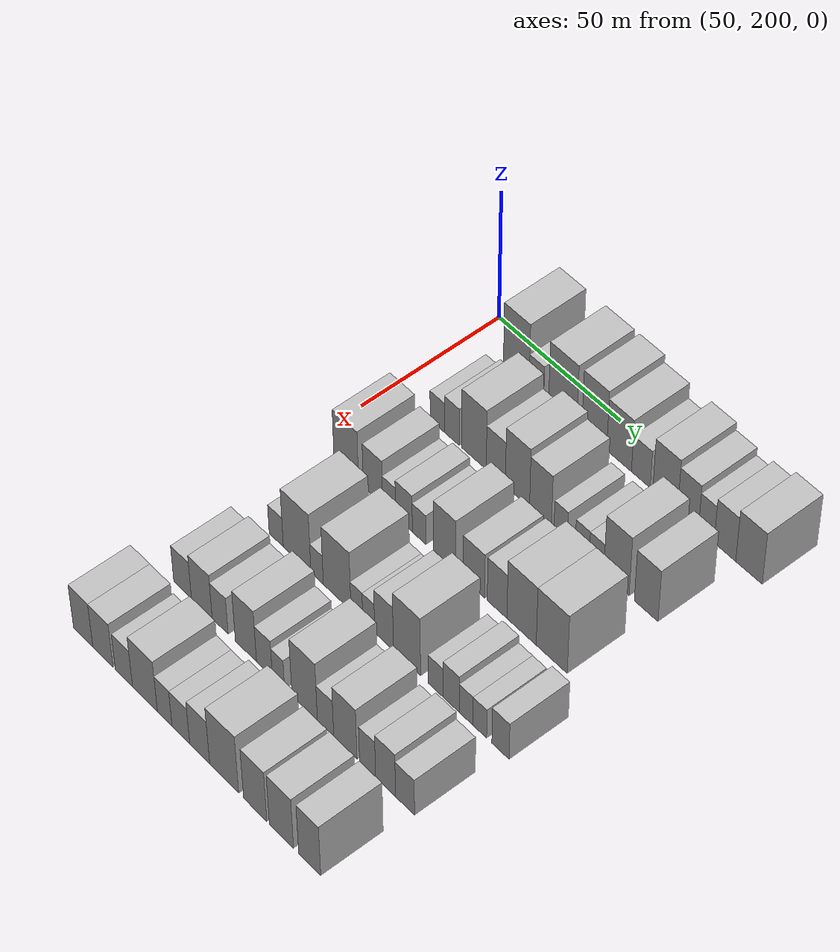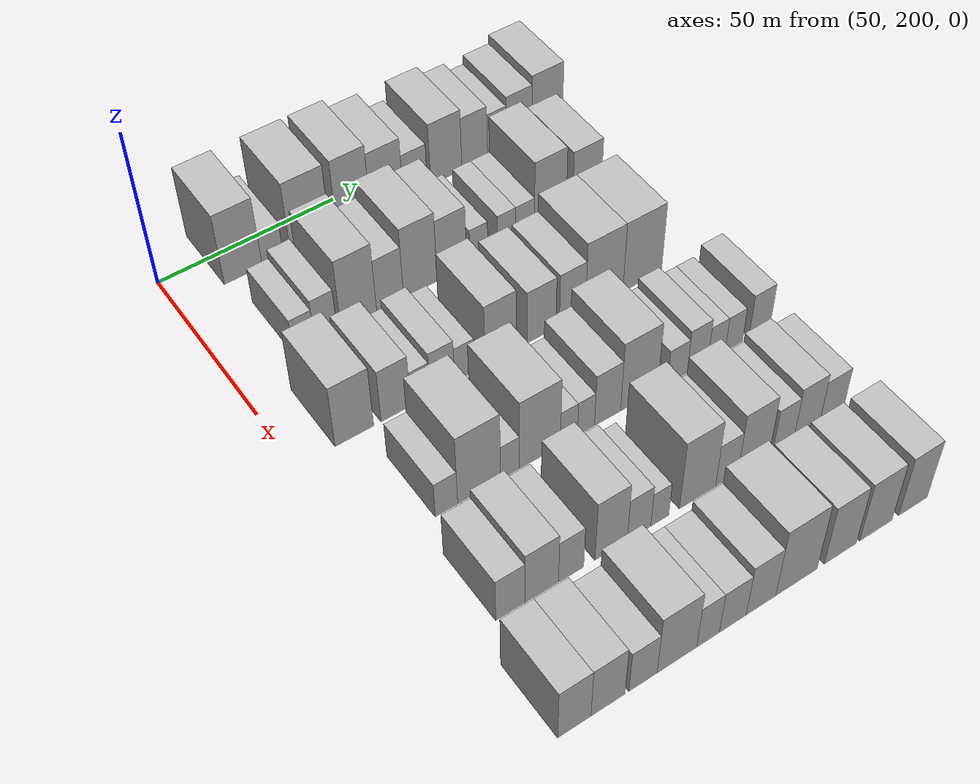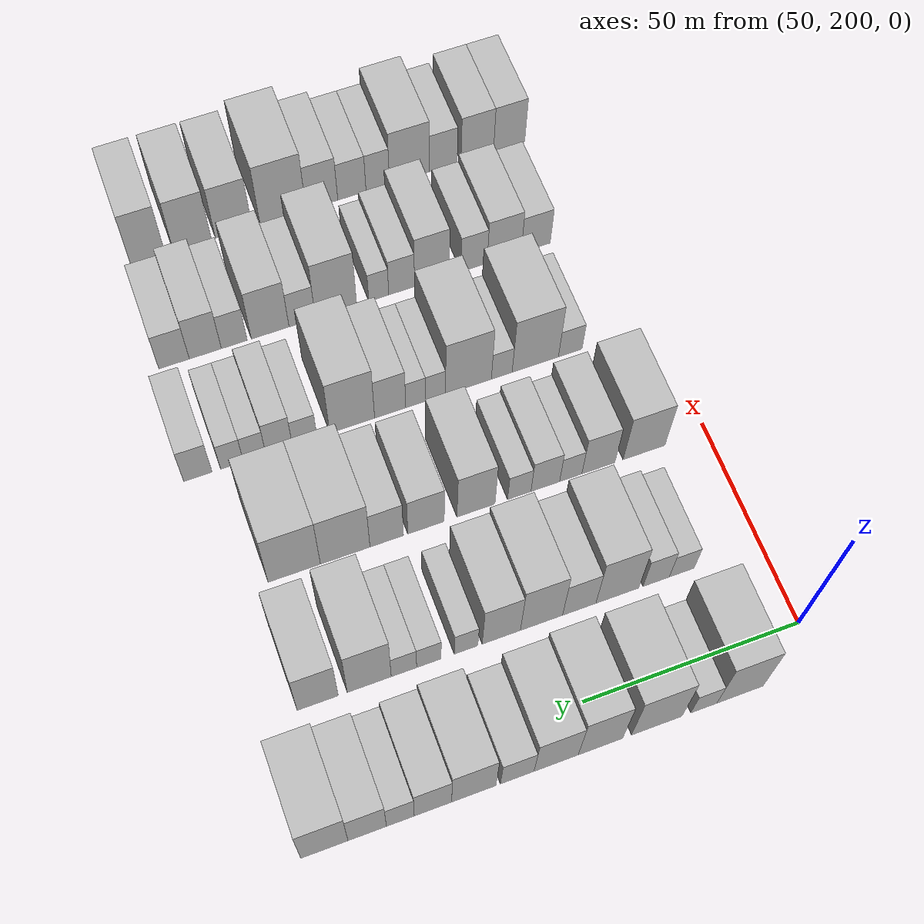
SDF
<sdf version="1.6">
 <world name="default">
  <model name="building_78">
   <static>1</static>
   <pose>50.0000 218.3975 0 0.000000 0.000000 0.000000</pose>
   <link name="link">
    <pose>0 0 12.00 0 0 0</pose>
    <collision name="collision"><geometry><box><size>20.0000 10.6711 24.0000</size></box></geometry></collision>
    <visual name="visual">
     <cast_shadows>0</cast_shadows>
     <geometry><box><size>20.0000 10.6711 24.0000</size></box></geometry>
     <material>
      <script>
       <uri>model://HANNAS_wall/materials/scripts</uri>
       <uri>model://HANNAS_wall/materials/textures</uri>
       <name>vrc/HANNAS_wall</name>
      </script>
     </material>
    </visual>
   </link>
  </model>
  <model name="building_79">
   <static>1</static>
   <pose>50.0000 226.7317 0 0.000000 0.000000 0.000000</pose>
   <link name="link">
    <pose>0 0 6.00 0 0 0</pose>
    <collision name="collision"><geometry><box><size>20.0000 5.9972 12.0000</size></box></geometry></collision>
    <visual name="visual">
     <cast_shadows>0</cast_shadows>
     <geometry><box><size>20.0000 5.9972 12.0000</size></box></geometry>
     <material>
      <script>
       <uri>model://HANNAS_wall/materials/scripts</uri>
       <uri>model://HANNAS_wall/materials/textures</uri>
       <name>vrc/HANNAS_wall</name>
      </script>
     </material>
    </visual>
   </link>
  </model>
  <model name="building_80">
   <static>1</static>
   <pose>50.0000 237.4745 0 0.000000 0.000000 0.000000</pose>
   <link name="link">
    <pose>0 0 12.00 0 0 0</pose>
    <collision name="collision"><geometry><box><size>20.0000 11.4885 24.0000</size></box></geometry></collision>
    <visual name="visual">
     <cast_shadows>0</cast_shadows>
     <geometry><box><size>20.0000 11.4885 24.0000</size></box></geometry>
     <material>
      <script>
       <uri>model://HANNAS_wall/materials/scripts</uri>
       <uri>model://HANNAS_wall/materials/textures</uri>
       <name>vrc/HANNAS_wall</name>
      </script>
     </material>
    </visual>
   </link>
  </model>
  <model name="building_81">
   <static>1</static>
   <pose>50.0000 250.2068 0 0.000000 0.000000 0.000000</pose>
   <link name="link">
    <pose>0 0 12.00 0 0 0</pose>
    <collision name="collision"><geometry><box><size>20.0000 9.9762 24.0000</size></box></geometry></collision>
    <visual name="visual">
     <cast_shadows>0</cast_shadows>
     <geometry><box><size>20.0000 9.9762 24.0000</size></box></geometry>
     <material>
      <script>
       <uri>model://HANNAS_wall/materials/scripts</uri>
       <uri>model://HANNAS_wall/materials/textures</uri>
       <name>vrc/HANNAS_wall</name>
      </script>
     </material>
    </visual>
   </link>
  </model>
  <model name="building_82">
   <static>1</static>
   <pose>50.0000 260.1306 0 0.000000 0.000000 0.000000</pose>
   <link name="link">
    <pose>0 0 10.50 0 0 0</pose>
    <collision name="collision"><geometry><box><size>20.0000 9.8714 21.0000</size></box></geometry></collision>
    <visual name="visual">
     <cast_shadows>0</cast_shadows>
     <geometry><box><size>20.0000 9.8714 21.0000</size></box></geometry>
     <material>
      <script>
       <uri>model://HANNAS_wall/materials/scripts</uri>
       <uri>model://HANNAS_wall/materials/textures</uri>
       <name>vrc/HANNAS_wall</name>
      </script>
     </material>
    </visual>
   </link>
  </model>
  <model name="building_83">
   <static>1</static>
   <pose>50.0000 268.7758 0 0.000000 0.000000 0.000000</pose>
   <link name="link">
    <pose>0 0 7.50 0 0 0</pose>
    <collision name="collision"><geometry><box><size>20.0000 7.4190 15.0000</size></box></geometry></collision>
    <visual name="visual">
     <cast_shadows>0</cast_shadows>
     <geometry><box><size>20.0000 7.4190 15.0000</size></box></geometry>
     <material>
      <script>
       <uri>model://HANNAS_wall/materials/scripts</uri>
       <uri>model://HANNAS_wall/materials/textures</uri>
       <name>vrc/HANNAS_wall</name>
      </script>
     </material>
    </visual>
   </link>
  </model>
  <model name="building_84">
   <static>1</static>
   <pose>50.0000 278.3371 0 0.000000 0.000000 0.000000</pose>
   <link name="link">
    <pose>0 0 10.50 0 0 0</pose>
    <collision name="collision"><geometry><box><size>20.0000 9.7036 21.0000</size></box></geometry></collision>
    <visual name="visual">
     <cast_shadows>0</cast_shadows>
     <geometry><box><size>20.0000 9.7036 21.0000</size></box></geometry>
     <material>
      <script>
       <uri>model://HANNAS_wall/materials/scripts</uri>
       <uri>model://HANNAS_wall/materials/textures</uri>
       <name>vrc/HANNAS_wall</name>
      </script>
     </material>
    </visual>
   </link>
  </model>
  <model name="building_85">
   <static>1</static>
   <pose>50.0000 287.2394 0 0.000000 0.000000 0.000000</pose>
   <link name="link">
    <pose>0 0 9.00 0 0 0</pose>
    <collision name="collision"><geometry><box><size>20.0000 8.1009 18.0000</size></box></geometry></collision>
    <visual name="visual">
     <cast_shadows>0</cast_shadows>
     <geometry><box><size>20.0000 8.1009 18.0000</size></box></geometry>
     <material>
      <script>
       <uri>model://HANNAS_wall/materials/scripts</uri>
       <uri>model://HANNAS_wall/materials/textures</uri>
       <name>vrc/HANNAS_wall</name>
      </script>
     </material>
    </visual>
   </link>
  </model>
  <model name="building_86">
   <static>1</static>
   <pose>50.0000 294.2984 0 0.000000 0.000000 0.000000</pose>
   <link name="link">
    <pose>0 0 7.50 0 0 0</pose>
    <collision name="collision"><geometry><box><size>20.0000 6.0171 15.0000</size></box></geometry></collision>
    <visual name="visual">
     <cast_shadows>0</cast_shadows>
     <geometry><box><size>20.0000 6.0171 15.0000</size></box></geometry>
     <material>
      <script>
       <uri>model://HANNAS_wall/materials/scripts</uri>
       <uri>model://HANNAS_wall/materials/textures</uri>
       <name>vrc/HANNAS_wall</name>
      </script>
     </material>
    </visual>
   </link>
  </model>
  <model name="building_87">
   <static>1</static>
   <pose>50.0000 301.4266 0 0.000000 0.000000 0.000000</pose>
   <link name="link">
    <pose>0 0 9.00 0 0 0</pose>
    <collision name="collision"><geometry><box><size>20.0000 8.2394 18.0000</size></box></geometry></collision>
    <visual name="visual">
     <cast_shadows>0</cast_shadows>
     <geometry><box><size>20.0000 8.2394 18.0000</size></box></geometry>
     <material>
      <script>
       <uri>model://HANNAS_wall/materials/scripts</uri>
       <uri>model://HANNAS_wall/materials/textures</uri>
       <name>vrc/HANNAS_wall</name>
      </script>
     </material>
    </visual>
   </link>
  </model>
  <model name="building_88">
   <static>1</static>
   <pose>50.0000 310.5753 0 0.000000 0.000000 0.000000</pose>
   <link name="link">
    <pose>0 0 10.50 0 0 0</pose>
    <collision name="collision"><geometry><box><size>20.0000 10.0580 21.0000</size></box></geometry></collision>
    <visual name="visual">
     <cast_shadows>0</cast_shadows>
     <geometry><box><size>20.0000 10.0580 21.0000</size></box></geometry>
     <material>
      <script>
       <uri>model://HANNAS_wall/materials/scripts</uri>
       <uri>model://HANNAS_wall/materials/textures</uri>
       <name>vrc/HANNAS_wall</name>
      </script>
     </material>
    </visual>
   </link>
  </model>
  <model name="building_192">
   <static>1</static>
   <pose>79.0000 218.8804 0 0.000000 0.000000 0.000000</pose>
   <link name="link">
    <pose>0 0 6.00 0 0 0</pose>
    <collision name="collision"><geometry><box><size>20.0000 5.8944 12.0000</size></box></geometry></collision>
    <visual name="visual">
     <cast_shadows>0</cast_shadows>
     <geometry><box><size>20.0000 5.8944 12.0000</size></box></geometry>
     <material>
      <script>
       <uri>model://HANNAS_wall/materials/scripts</uri>
       <uri>model://HANNAS_wall/materials/textures</uri>
       <name>vrc/HANNAS_wall</name>
      </script>
     </material>
    </visual>
   </link>
  </model>
  <model name="building_193">
   <static>1</static>
   <pose>79.0000 224.9401 0 0.000000 0.000000 0.000000</pose>
   <link name="link">
    <pose>0 0 7.50 0 0 0</pose>
    <collision name="collision"><geometry><box><size>20.0000 6.2251 15.0000</size></box></geometry></collision>
    <visual name="visual">
     <cast_shadows>0</cast_shadows>
     <geometry><box><size>20.0000 6.2251 15.0000</size></box></geometry>
     <material>
      <script>
       <uri>model://HANNAS_wall/materials/scripts</uri>
       <uri>model://HANNAS_wall/materials/textures</uri>
       <name>vrc/HANNAS_wall</name>
      </script>
     </material>
    </visual>
   </link>
  </model>
  <model name="building_194">
   <static>1</static>
   <pose>79.0000 234.0861 0 0.000000 0.000000 0.000000</pose>
   <link name="link">
    <pose>0 0 12.00 0 0 0</pose>
    <collision name="collision"><geometry><box><size>20.0000 10.0669 24.0000</size></box></geometry></collision>
    <visual name="visual">
     <cast_shadows>0</cast_shadows>
     <geometry><box><size>20.0000 10.0669 24.0000</size></box></geometry>
     <material>
      <script>
       <uri>model://HANNAS_wall/materials/scripts</uri>
       <uri>model://HANNAS_wall/materials/textures</uri>
       <name>vrc/HANNAS_wall</name>
      </script>
     </material>
    </visual>
   </link>
  </model>
  <model name="building_195">
   <static>1</static>
   <pose>79.0000 242.9933 0 0.000000 0.000000 0.000000</pose>
   <link name="link">
    <pose>0 0 9.00 0 0 0</pose>
    <collision name="collision"><geometry><box><size>20.0000 7.7475 18.0000</size></box></geometry></collision>
    <visual name="visual">
     <cast_shadows>0</cast_shadows>
     <geometry><box><size>20.0000 7.7475 18.0000</size></box></geometry>
     <material>
      <script>
       <uri>model://HANNAS_wall/materials/scripts</uri>
       <uri>model://HANNAS_wall/materials/textures</uri>
       <name>vrc/HANNAS_wall</name>
      </script>
     </material>
    </visual>
   </link>
  </model>
  <model name="building_196">
   <static>1</static>
   <pose>79.0000 251.7404 0 0.000000 0.000000 0.000000</pose>
   <link name="link">
    <pose>0 0 12.00 0 0 0</pose>
    <collision name="collision"><geometry><box><size>20.0000 9.7467 24.0000</size></box></geometry></collision>
    <visual name="visual">
     <cast_shadows>0</cast_shadows>
     <geometry><box><size>20.0000 9.7467 24.0000</size></box></geometry>
     <material>
      <script>
       <uri>model://HANNAS_wall/materials/scripts</uri>
       <uri>model://HANNAS_wall/materials/textures</uri>
       <name>vrc/HANNAS_wall</name>
      </script>
     </material>
    </visual>
   </link>
  </model>
  <model name="building_197">
   <static>1</static>
   <pose>79.0000 260.9863 0 0.000000 0.000000 0.000000</pose>
   <link name="link">
    <pose>0 0 10.50 0 0 0</pose>
    <collision name="collision"><geometry><box><size>20.0000 8.7450 21.0000</size></box></geometry></collision>
    <visual name="visual">
     <cast_shadows>0</cast_shadows>
     <geometry><box><size>20.0000 8.7450 21.0000</size></box></geometry>
     <material>
      <script>
       <uri>model://HANNAS_wall/materials/scripts</uri>
       <uri>model://HANNAS_wall/materials/textures</uri>
       <name>vrc/HANNAS_wall</name>
      </script>
     </material>
    </visual>
   </link>
  </model>
  <model name="building_198">
   <static>1</static>
   <pose>79.0000 269.0378 0 0.000000 0.000000 0.000000</pose>
   <link name="link">
    <pose>0 0 6.00 0 0 0</pose>
    <collision name="collision"><geometry><box><size>20.0000 5.3581 12.0000</size></box></geometry></collision>
    <visual name="visual">
     <cast_shadows>0</cast_shadows>
     <geometry><box><size>20.0000 5.3581 12.0000</size></box></geometry>
     <material>
      <script>
       <uri>model://HANNAS_wall/materials/scripts</uri>
       <uri>model://HANNAS_wall/materials/textures</uri>
       <name>vrc/HANNAS_wall</name>
      </script>
     </material>
    </visual>
   </link>
  </model>
  <model name="building_199">
   <static>1</static>
   <pose>79.0000 277.4678 0 0.000000 0.000000 0.000000</pose>
   <link name="link">
    <pose>0 0 6.00 0 0 0</pose>
    <collision name="collision"><geometry><box><size>20.0000 5.5019 12.0000</size></box></geometry></collision>
    <visual name="visual">
     <cast_shadows>0</cast_shadows>
     <geometry><box><size>20.0000 5.5019 12.0000</size></box></geometry>
     <material>
      <script>
       <uri>model://HANNAS_wall/materials/scripts</uri>
       <uri>model://HANNAS_wall/materials/textures</uri>
       <name>vrc/HANNAS_wall</name>
      </script>
     </material>
    </visual>
   </link>
  </model>
  <model name="building_200">
   <static>1</static>
   <pose>79.0000 283.0753 0 0.000000 0.000000 0.000000</pose>
   <link name="link">
    <pose>0 0 6.00 0 0 0</pose>
    <collision name="collision"><geometry><box><size>20.0000 5.7130 12.0000</size></box></geometry></collision>
    <visual name="visual">
     <cast_shadows>0</cast_shadows>
     <geometry><box><size>20.0000 5.7130 12.0000</size></box></geometry>
     <material>
      <script>
       <uri>model://HANNAS_wall/materials/scripts</uri>
       <uri>model://HANNAS_wall/materials/textures</uri>
       <name>vrc/HANNAS_wall</name>
      </script>
     </material>
    </visual>
   </link>
  </model>
  <model name="building_201">
   <static>1</static>
   <pose>79.0000 290.8412 0 0.000000 0.000000 0.000000</pose>
   <link name="link">
    <pose>0 0 12.00 0 0 0</pose>
    <collision name="collision"><geometry><box><size>20.0000 9.8189 24.0000</size></box></geometry></collision>
    <visual name="visual">
     <cast_shadows>0</cast_shadows>
     <geometry><box><size>20.0000 9.8189 24.0000</size></box></geometry>
     <material>
      <script>
       <uri>model://HANNAS_wall/materials/scripts</uri>
       <uri>model://HANNAS_wall/materials/textures</uri>
       <name>vrc/HANNAS_wall</name>
      </script>
     </material>
    </visual>
   </link>
  </model>
  <model name="building_202">
   <static>1</static>
   <pose>79.0000 302.2897 0 0.000000 0.000000 0.000000</pose>
   <link name="link">
    <pose>0 0 10.50 0 0 0</pose>
    <collision name="collision"><geometry><box><size>20.0000 9.0780 21.0000</size></box></geometry></collision>
    <visual name="visual">
     <cast_shadows>0</cast_shadows>
     <geometry><box><size>20.0000 9.0780 21.0000</size></box></geometry>
     <material>
      <script>
       <uri>model://HANNAS_wall/materials/scripts</uri>
       <uri>model://HANNAS_wall/materials/textures</uri>
       <name>vrc/HANNAS_wall</name>
      </script>
     </material>
    </visual>
   </link>
  </model>
  <model name="building_303">
   <static>1</static>
   <pose>108.0000 215.2366 0 0.000000 0.000000 0.000000</pose>
   <link name="link">
    <pose>0 0 10.50 0 0 0</pose>
    <collision name="collision"><geometry><box><size>20.0000 10.2616 21.0000</size></box></geometry></collision>
    <visual name="visual">
     <cast_shadows>0</cast_shadows>
     <geometry><box><size>20.0000 10.2616 21.0000</size></box></geometry>
     <material>
      <script>
       <uri>model://HANNAS_wall/materials/scripts</uri>
       <uri>model://HANNAS_wall/materials/textures</uri>
       <name>vrc/HANNAS_wall</name>
      </script>
     </material>
    </visual>
   </link>
  </model>
  <model name="building_304">
   <static>1</static>
   <pose>108.0000 226.3731 0 0.000000 0.000000 0.000000</pose>
   <link name="link">
    <pose>0 0 9.00 0 0 0</pose>
    <collision name="collision"><geometry><box><size>20.0000 8.0113 18.0000</size></box></geometry></collision>
    <visual name="visual">
     <cast_shadows>0</cast_shadows>
     <geometry><box><size>20.0000 8.0113 18.0000</size></box></geometry>
     <material>
      <script>
       <uri>model://HANNAS_wall/materials/scripts</uri>
       <uri>model://HANNAS_wall/materials/textures</uri>
       <name>vrc/HANNAS_wall</name>
      </script>
     </material>
    </visual>
   </link>
  </model>
  <model name="building_305">
   <static>1</static>
   <pose>108.0000 233.0634 0 0.000000 0.000000 0.000000</pose>
   <link name="link">
    <pose>0 0 6.00 0 0 0</pose>
    <collision name="collision"><geometry><box><size>20.0000 5.3694 12.0000</size></box></geometry></collision>
    <visual name="visual">
     <cast_shadows>0</cast_shadows>
     <geometry><box><size>20.0000 5.3694 12.0000</size></box></geometry>
     <material>
      <script>
       <uri>model://HANNAS_wall/materials/scripts</uri>
       <uri>model://HANNAS_wall/materials/textures</uri>
       <name>vrc/HANNAS_wall</name>
      </script>
     </material>
    </visual>
   </link>
  </model>
  <model name="building_306">
   <static>1</static>
   <pose>108.0000 239.1834 0 0.000000 0.000000 0.000000</pose>
   <link name="link">
    <pose>0 0 7.50 0 0 0</pose>
    <collision name="collision"><geometry><box><size>20.0000 6.8705 15.0000</size></box></geometry></collision>
    <visual name="visual">
     <cast_shadows>0</cast_shadows>
     <geometry><box><size>20.0000 6.8705 15.0000</size></box></geometry>
     <material>
      <script>
       <uri>model://HANNAS_wall/materials/scripts</uri>
       <uri>model://HANNAS_wall/materials/textures</uri>
       <name>vrc/HANNAS_wall</name>
      </script>
     </material>
    </visual>
   </link>
  </model>
  <model name="building_307">
   <static>1</static>
   <pose>108.0000 245.4077 0 0.000000 0.000000 0.000000</pose>
   <link name="link">
    <pose>0 0 6.00 0 0 0</pose>
    <collision name="collision"><geometry><box><size>20.0000 5.5781 12.0000</size></box></geometry></collision>
    <visual name="visual">
     <cast_shadows>0</cast_shadows>
     <geometry><box><size>20.0000 5.5781 12.0000</size></box></geometry>
     <material>
      <script>
       <uri>model://HANNAS_wall/materials/scripts</uri>
       <uri>model://HANNAS_wall/materials/textures</uri>
       <name>vrc/HANNAS_wall</name>
      </script>
     </material>
    </visual>
   </link>
  </model>
  <model name="building_308">
   <static>1</static>
   <pose>108.0000 255.7067 0 0.000000 0.000000 0.000000</pose>
   <link name="link">
    <pose>0 0 10.50 0 0 0</pose>
    <collision name="collision"><geometry><box><size>20.0000 9.0200 21.0000</size></box></geometry></collision>
    <visual name="visual">
     <cast_shadows>0</cast_shadows>
     <geometry><box><size>20.0000 9.0200 21.0000</size></box></geometry>
     <material>
      <script>
       <uri>model://HANNAS_wall/materials/scripts</uri>
       <uri>model://HANNAS_wall/materials/textures</uri>
       <name>vrc/HANNAS_wall</name>
      </script>
     </material>
    </visual>
   </link>
  </model>
  <model name="building_309">
   <static>1</static>
   <pose>108.0000 267.4786 0 0.000000 0.000000 0.000000</pose>
   <link name="link">
    <pose>0 0 9.00 0 0 0</pose>
    <collision name="collision"><geometry><box><size>20.0000 8.5236 18.0000</size></box></geometry></collision>
    <visual name="visual">
     <cast_shadows>0</cast_shadows>
     <geometry><box><size>20.0000 8.5236 18.0000</size></box></geometry>
     <material>
      <script>
       <uri>model://HANNAS_wall/materials/scripts</uri>
       <uri>model://HANNAS_wall/materials/textures</uri>
       <name>vrc/HANNAS_wall</name>
      </script>
     </material>
    </visual>
   </link>
  </model>
  <model name="building_310">
   <static>1</static>
   <pose>108.0000 276.6302 0 0.000000 0.000000 0.000000</pose>
   <link name="link">
    <pose>0 0 9.00 0 0 0</pose>
    <collision name="collision"><geometry><box><size>20.0000 7.7796 18.0000</size></box></geometry></collision>
    <visual name="visual">
     <cast_shadows>0</cast_shadows>
     <geometry><box><size>20.0000 7.7796 18.0000</size></box></geometry>
     <material>
      <script>
       <uri>model://HANNAS_wall/materials/scripts</uri>
       <uri>model://HANNAS_wall/materials/textures</uri>
       <name>vrc/HANNAS_wall</name>
      </script>
     </material>
    </visual>
   </link>
  </model>
  <model name="building_311">
   <static>1</static>
   <pose>108.0000 286.2392 0 0.000000 0.000000 0.000000</pose>
   <link name="link">
    <pose>0 0 12.00 0 0 0</pose>
    <collision name="collision"><geometry><box><size>20.0000 11.4385 24.0000</size></box></geometry></collision>
    <visual name="visual">
     <cast_shadows>0</cast_shadows>
     <geometry><box><size>20.0000 11.4385 24.0000</size></box></geometry>
     <material>
      <script>
       <uri>model://HANNAS_wall/materials/scripts</uri>
       <uri>model://HANNAS_wall/materials/textures</uri>
       <name>vrc/HANNAS_wall</name>
      </script>
     </material>
    </visual>
   </link>
  </model>
  <model name="building_312">
   <static>1</static>
   <pose>108.0000 297.9435 0 0.000000 0.000000 0.000000</pose>
   <link name="link">
    <pose>0 0 12.00 0 0 0</pose>
    <collision name="collision"><geometry><box><size>20.0000 11.9700 24.0000</size></box></geometry></collision>
    <visual name="visual">
     <cast_shadows>0</cast_shadows>
     <geometry><box><size>20.0000 11.9700 24.0000</size></box></geometry>
     <material>
      <script>
       <uri>model://HANNAS_wall/materials/scripts</uri>
       <uri>model://HANNAS_wall/materials/textures</uri>
       <name>vrc/HANNAS_wall</name>
      </script>
     </material>
    </visual>
   </link>
  </model>
  <model name="building_408">
   <static>1</static>
   <pose>137.0000 221.2769 0 0.000000 0.000000 0.000000</pose>
   <link name="link">
    <pose>0 0 6.00 0 0 0</pose>
    <collision name="collision"><geometry><box><size>20.0000 5.9003 12.0000</size></box></geometry></collision>
    <visual name="visual">
     <cast_shadows>0</cast_shadows>
     <geometry><box><size>20.0000 5.9003 12.0000</size></box></geometry>
     <material>
      <script>
       <uri>model://HANNAS_wall/materials/scripts</uri>
       <uri>model://HANNAS_wall/materials/textures</uri>
       <name>vrc/HANNAS_wall</name>
      </script>
     </material>
    </visual>
   </link>
  </model>
  <model name="building_409">
   <static>1</static>
   <pose>137.0000 229.9738 0 0.000000 0.000000 0.000000</pose>
   <link name="link">
    <pose>0 0 12.00 0 0 0</pose>
    <collision name="collision"><geometry><box><size>20.0000 11.4936 24.0000</size></box></geometry></collision>
    <visual name="visual">
     <cast_shadows>0</cast_shadows>
     <geometry><box><size>20.0000 11.4936 24.0000</size></box></geometry>
     <material>
      <script>
       <uri>model://HANNAS_wall/materials/scripts</uri>
       <uri>model://HANNAS_wall/materials/textures</uri>
       <name>vrc/HANNAS_wall</name>
      </script>
     </material>
    </visual>
   </link>
  </model>
  <model name="building_410">
   <static>1</static>
   <pose>137.0000 238.2817 0 0.000000 0.000000 0.000000</pose>
   <link name="link">
    <pose>0 0 6.00 0 0 0</pose>
    <collision name="collision"><geometry><box><size>20.0000 5.1222 12.0000</size></box></geometry></collision>
    <visual name="visual">
     <cast_shadows>0</cast_shadows>
     <geometry><box><size>20.0000 5.1222 12.0000</size></box></geometry>
     <material>
      <script>
       <uri>model://HANNAS_wall/materials/scripts</uri>
       <uri>model://HANNAS_wall/materials/textures</uri>
       <name>vrc/HANNAS_wall</name>
      </script>
     </material>
    </visual>
   </link>
  </model>
  <model name="building_411">
   <static>1</static>
   <pose>137.0000 246.4869 0 0.000000 0.000000 0.000000</pose>
   <link name="link">
    <pose>0 0 12.00 0 0 0</pose>
    <collision name="collision"><geometry><box><size>20.0000 11.2883 24.0000</size></box></geometry></collision>
    <visual name="visual">
     <cast_shadows>0</cast_shadows>
     <geometry><box><size>20.0000 11.2883 24.0000</size></box></geometry>
     <material>
      <script>
       <uri>model://HANNAS_wall/materials/scripts</uri>
       <uri>model://HANNAS_wall/materials/textures</uri>
       <name>vrc/HANNAS_wall</name>
      </script>
     </material>
    </visual>
   </link>
  </model>
  <model name="building_412">
   <static>1</static>
   <pose>137.0000 254.5326 0 0.000000 0.000000 0.000000</pose>
   <link name="link">
    <pose>0 0 6.00 0 0 0</pose>
    <collision name="collision"><geometry><box><size>20.0000 4.8030 12.0000</size></box></geometry></collision>
    <visual name="visual">
     <cast_shadows>0</cast_shadows>
     <geometry><box><size>20.0000 4.8030 12.0000</size></box></geometry>
     <material>
      <script>
       <uri>model://HANNAS_wall/materials/scripts</uri>
       <uri>model://HANNAS_wall/materials/textures</uri>
       <name>vrc/HANNAS_wall</name>
      </script>
     </material>
    </visual>
   </link>
  </model>
  <model name="building_413">
   <static>1</static>
   <pose>137.0000 259.3461 0 0.000000 0.000000 0.000000</pose>
   <link name="link">
    <pose>0 0 6.00 0 0 0</pose>
    <collision name="collision"><geometry><box><size>20.0000 4.8241 12.0000</size></box></geometry></collision>
    <visual name="visual">
     <cast_shadows>0</cast_shadows>
     <geometry><box><size>20.0000 4.8241 12.0000</size></box></geometry>
     <material>
      <script>
       <uri>model://HANNAS_wall/materials/scripts</uri>
       <uri>model://HANNAS_wall/materials/textures</uri>
       <name>vrc/HANNAS_wall</name>
      </script>
     </material>
    </visual>
   </link>
  </model>
  <model name="building_414">
   <static>1</static>
   <pose>137.0000 265.5031 0 0.000000 0.000000 0.000000</pose>
   <link name="link">
    <pose>0 0 9.00 0 0 0</pose>
    <collision name="collision"><geometry><box><size>20.0000 7.4898 18.0000</size></box></geometry></collision>
    <visual name="visual">
     <cast_shadows>0</cast_shadows>
     <geometry><box><size>20.0000 7.4898 18.0000</size></box></geometry>
     <material>
      <script>
       <uri>model://HANNAS_wall/materials/scripts</uri>
       <uri>model://HANNAS_wall/materials/textures</uri>
       <name>vrc/HANNAS_wall</name>
      </script>
     </material>
    </visual>
   </link>
  </model>
  <model name="building_415">
   <static>1</static>
   <pose>137.0000 274.6349 0 0.000000 0.000000 0.000000</pose>
   <link name="link">
    <pose>0 0 12.00 0 0 0</pose>
    <collision name="collision"><geometry><box><size>20.0000 10.7738 24.0000</size></box></geometry></collision>
    <visual name="visual">
     <cast_shadows>0</cast_shadows>
     <geometry><box><size>20.0000 10.7738 24.0000</size></box></geometry>
     <material>
      <script>
       <uri>model://HANNAS_wall/materials/scripts</uri>
       <uri>model://HANNAS_wall/materials/textures</uri>
       <name>vrc/HANNAS_wall</name>
      </script>
     </material>
    </visual>
   </link>
  </model>
  <model name="building_416">
   <static>1</static>
   <pose>137.0000 285.9527 0 0.000000 0.000000 0.000000</pose>
   <link name="link">
    <pose>0 0 6.00 0 0 0</pose>
    <collision name="collision"><geometry><box><size>20.0000 5.8617 12.0000</size></box></geometry></collision>
    <visual name="visual">
     <cast_shadows>0</cast_shadows>
     <geometry><box><size>20.0000 5.8617 12.0000</size></box></geometry>
     <material>
      <script>
       <uri>model://HANNAS_wall/materials/scripts</uri>
       <uri>model://HANNAS_wall/materials/textures</uri>
       <name>vrc/HANNAS_wall</name>
      </script>
     </material>
    </visual>
   </link>
  </model>
  <model name="building_417">
   <static>1</static>
   <pose>137.0000 292.0216 0 0.000000 0.000000 0.000000</pose>
   <link name="link">
    <pose>0 0 7.50 0 0 0</pose>
    <collision name="collision"><geometry><box><size>20.0000 6.2761 15.0000</size></box></geometry></collision>
    <visual name="visual">
     <cast_shadows>0</cast_shadows>
     <geometry><box><size>20.0000 6.2761 15.0000</size></box></geometry>
     <material>
      <script>
       <uri>model://HANNAS_wall/materials/scripts</uri>
       <uri>model://HANNAS_wall/materials/textures</uri>
       <name>vrc/HANNAS_wall</name>
      </script>
     </material>
    </visual>
   </link>
  </model>
  <model name="building_418">
   <static>1</static>
   <pose>137.0000 297.8046 0 0.000000 0.000000 0.000000</pose>
   <link name="link">
    <pose>0 0 6.00 0 0 0</pose>
    <collision name="collision"><geometry><box><size>20.0000 5.2901 12.0000</size></box></geometry></collision>
    <visual name="visual">
     <cast_shadows>0</cast_shadows>
     <geometry><box><size>20.0000 5.2901 12.0000</size></box></geometry>
     <material>
      <script>
       <uri>model://HANNAS_wall/materials/scripts</uri>
       <uri>model://HANNAS_wall/materials/textures</uri>
       <name>vrc/HANNAS_wall</name>
      </script>
     </material>
    </visual>
   </link>
  </model>
  <model name="building_419">
   <static>1</static>
   <pose>137.0000 303.1087 0 0.000000 0.000000 0.000000</pose>
   <link name="link">
    <pose>0 0 6.00 0 0 0</pose>
    <collision name="collision"><geometry><box><size>20.0000 5.3181 12.0000</size></box></geometry></collision>
    <visual name="visual">
     <cast_shadows>0</cast_shadows>
     <geometry><box><size>20.0000 5.3181 12.0000</size></box></geometry>
     <material>
      <script>
       <uri>model://HANNAS_wall/materials/scripts</uri>
       <uri>model://HANNAS_wall/materials/textures</uri>
       <name>vrc/HANNAS_wall</name>
      </script>
     </material>
    </visual>
   </link>
  </model>
  <model name="building_420">
   <static>1</static>
   <pose>137.0000 311.0741 0 0.000000 0.000000 0.000000</pose>
   <link name="link">
    <pose>0 0 7.50 0 0 0</pose>
    <collision name="collision"><geometry><box><size>20.0000 6.6126 15.0000</size></box></geometry></collision>
    <visual name="visual">
     <cast_shadows>0</cast_shadows>
     <geometry><box><size>20.0000 6.6126 15.0000</size></box></geometry>
     <material>
      <script>
       <uri>model://HANNAS_wall/materials/scripts</uri>
       <uri>model://HANNAS_wall/materials/textures</uri>
       <name>vrc/HANNAS_wall</name>
      </script>
     </material>
    </visual>
   </link>
  </model>
  <model name="building_525">
   <static>1</static>
   <pose>166.0000 218.2885 0 0.000000 0.000000 0.000000</pose>
   <link name="link">
    <pose>0 0 7.50 0 0 0</pose>
    <collision name="collision"><geometry><box><size>20.0000 7.4633 15.0000</size></box></geometry></collision>
    <visual name="visual">
     <cast_shadows>0</cast_shadows>
     <geometry><box><size>20.0000 7.4633 15.0000</size></box></geometry>
     <material>
      <script>
       <uri>model://HANNAS_wall/materials/scripts</uri>
       <uri>model://HANNAS_wall/materials/textures</uri>
       <name>vrc/HANNAS_wall</name>
      </script>
     </material>
    </visual>
   </link>
  </model>
  <model name="building_526">
   <static>1</static>
   <pose>166.0000 226.3731 0 0.000000 0.000000 0.000000</pose>
   <link name="link">
    <pose>0 0 9.00 0 0 0</pose>
    <collision name="collision"><geometry><box><size>20.0000 8.7060 18.0000</size></box></geometry></collision>
    <visual name="visual">
     <cast_shadows>0</cast_shadows>
     <geometry><box><size>20.0000 8.7060 18.0000</size></box></geometry>
     <material>
      <script>
       <uri>model://HANNAS_wall/materials/scripts</uri>
       <uri>model://HANNAS_wall/materials/textures</uri>
       <name>vrc/HANNAS_wall</name>
      </script>
     </material>
    </visual>
   </link>
  </model>
  <model name="building_527">
   <static>1</static>
   <pose>166.0000 234.0486 0 0.000000 0.000000 0.000000</pose>
   <link name="link">
    <pose>0 0 7.50 0 0 0</pose>
    <collision name="collision"><geometry><box><size>20.0000 6.6450 15.0000</size></box></geometry></collision>
    <visual name="visual">
     <cast_shadows>0</cast_shadows>
     <geometry><box><size>20.0000 6.6450 15.0000</size></box></geometry>
     <material>
      <script>
       <uri>model://HANNAS_wall/materials/scripts</uri>
       <uri>model://HANNAS_wall/materials/textures</uri>
       <name>vrc/HANNAS_wall</name>
      </script>
     </material>
    </visual>
   </link>
  </model>
  <model name="building_528">
   <static>1</static>
   <pose>166.0000 244.7186 0 0.000000 0.000000 0.000000</pose>
   <link name="link">
    <pose>0 0 10.50 0 0 0</pose>
    <collision name="collision"><geometry><box><size>20.0000 8.6951 21.0000</size></box></geometry></collision>
    <visual name="visual">
     <cast_shadows>0</cast_shadows>
     <geometry><box><size>20.0000 8.6951 21.0000</size></box></geometry>
     <material>
      <script>
       <uri>model://HANNAS_wall/materials/scripts</uri>
       <uri>model://HANNAS_wall/materials/textures</uri>
       <name>vrc/HANNAS_wall</name>
      </script>
     </material>
    </visual>
   </link>
  </model>
  <model name="building_529">
   <static>1</static>
   <pose>166.0000 252.3053 0 0.000000 0.000000 0.000000</pose>
   <link name="link">
    <pose>0 0 7.50 0 0 0</pose>
    <collision name="collision"><geometry><box><size>20.0000 6.4782 15.0000</size></box></geometry></collision>
    <visual name="visual">
     <cast_shadows>0</cast_shadows>
     <geometry><box><size>20.0000 6.4782 15.0000</size></box></geometry>
     <material>
      <script>
       <uri>model://HANNAS_wall/materials/scripts</uri>
       <uri>model://HANNAS_wall/materials/textures</uri>
       <name>vrc/HANNAS_wall</name>
      </script>
     </material>
    </visual>
   </link>
  </model>
  <model name="building_530">
   <static>1</static>
   <pose>166.0000 258.0375 0 0.000000 0.000000 0.000000</pose>
   <link name="link">
    <pose>0 0 6.00 0 0 0</pose>
    <collision name="collision"><geometry><box><size>20.0000 4.9864 12.0000</size></box></geometry></collision>
    <visual name="visual">
     <cast_shadows>0</cast_shadows>
     <geometry><box><size>20.0000 4.9864 12.0000</size></box></geometry>
     <material>
      <script>
       <uri>model://HANNAS_wall/materials/scripts</uri>
       <uri>model://HANNAS_wall/materials/textures</uri>
       <name>vrc/HANNAS_wall</name>
      </script>
     </material>
    </visual>
   </link>
  </model>
  <model name="building_531">
   <static>1</static>
   <pose>166.0000 268.6356 0 0.000000 0.000000 0.000000</pose>
   <link name="link">
    <pose>0 0 12.00 0 0 0</pose>
    <collision name="collision"><geometry><box><size>20.0000 10.2097 24.0000</size></box></geometry></collision>
    <visual name="visual">
     <cast_shadows>0</cast_shadows>
     <geometry><box><size>20.0000 10.2097 24.0000</size></box></geometry>
     <material>
      <script>
       <uri>model://HANNAS_wall/materials/scripts</uri>
       <uri>model://HANNAS_wall/materials/textures</uri>
       <name>vrc/HANNAS_wall</name>
      </script>
     </material>
    </visual>
   </link>
  </model>
  <model name="building_532">
   <static>1</static>
   <pose>166.0000 276.9861 0 0.000000 0.000000 0.000000</pose>
   <link name="link">
    <pose>0 0 7.50 0 0 0</pose>
    <collision name="collision"><geometry><box><size>20.0000 6.4914 15.0000</size></box></geometry></collision>
    <visual name="visual">
     <cast_shadows>0</cast_shadows>
     <geometry><box><size>20.0000 6.4914 15.0000</size></box></geometry>
     <material>
      <script>
       <uri>model://HANNAS_wall/materials/scripts</uri>
       <uri>model://HANNAS_wall/materials/textures</uri>
       <name>vrc/HANNAS_wall</name>
      </script>
     </material>
    </visual>
   </link>
  </model>
  <model name="building_533">
   <static>1</static>
   <pose>166.0000 284.8383 0 0.000000 0.000000 0.000000</pose>
   <link name="link">
    <pose>0 0 10.50 0 0 0</pose>
    <collision name="collision"><geometry><box><size>20.0000 9.2131 21.0000</size></box></geometry></collision>
    <visual name="visual">
     <cast_shadows>0</cast_shadows>
     <geometry><box><size>20.0000 9.2131 21.0000</size></box></geometry>
     <material>
      <script>
       <uri>model://HANNAS_wall/materials/scripts</uri>
       <uri>model://HANNAS_wall/materials/textures</uri>
       <name>vrc/HANNAS_wall</name>
      </script>
     </material>
    </visual>
   </link>
  </model>
  <model name="building_534">
   <static>1</static>
   <pose>166.0000 293.5803 0 0.000000 0.000000 0.000000</pose>
   <link name="link">
    <pose>0 0 7.50 0 0 0</pose>
    <collision name="collision"><geometry><box><size>20.0000 6.2710 15.0000</size></box></geometry></collision>
    <visual name="visual">
     <cast_shadows>0</cast_shadows>
     <geometry><box><size>20.0000 6.2710 15.0000</size></box></geometry>
     <material>
      <script>
       <uri>model://HANNAS_wall/materials/scripts</uri>
       <uri>model://HANNAS_wall/materials/textures</uri>
       <name>vrc/HANNAS_wall</name>
      </script>
     </material>
    </visual>
   </link>
  </model>
  <model name="building_535">
   <static>1</static>
   <pose>166.0000 300.5851 0 0.000000 0.000000 0.000000</pose>
   <link name="link">
    <pose>0 0 9.00 0 0 0</pose>
    <collision name="collision"><geometry><box><size>20.0000 7.7386 18.0000</size></box></geometry></collision>
    <visual name="visual">
     <cast_shadows>0</cast_shadows>
     <geometry><box><size>20.0000 7.7386 18.0000</size></box></geometry>
     <material>
      <script>
       <uri>model://HANNAS_wall/materials/scripts</uri>
       <uri>model://HANNAS_wall/materials/textures</uri>
       <name>vrc/HANNAS_wall</name>
      </script>
     </material>
    </visual>
   </link>
  </model>
  <model name="building_536">
   <static>1</static>
   <pose>166.0000 308.1148 0 0.000000 0.000000 0.000000</pose>
   <link name="link">
    <pose>0 0 7.50 0 0 0</pose>
    <collision name="collision"><geometry><box><size>20.0000 7.3208 15.0000</size></box></geometry></collision>
    <visual name="visual">
     <cast_shadows>0</cast_shadows>
     <geometry><box><size>20.0000 7.3208 15.0000</size></box></geometry>
     <material>
      <script>
       <uri>model://HANNAS_wall/materials/scripts</uri>
       <uri>model://HANNAS_wall/materials/textures</uri>
       <name>vrc/HANNAS_wall</name>
      </script>
     </material>
    </visual>
   </link>
  </model>
  <model name="building_646">
   <static>1</static>
   <pose>195.0000 213.7492 0 0.000000 0.000000 0.000000</pose>
   <link name="link">
    <pose>0 0 9.00 0 0 0</pose>
    <collision name="collision"><geometry><box><size>20.0000 8.2423 18.0000</size></box></geometry></collision>
    <visual name="visual">
     <cast_shadows>0</cast_shadows>
     <geometry><box><size>20.0000 8.2423 18.0000</size></box></geometry>
     <material>
      <script>
       <uri>model://HANNAS_wall/materials/scripts</uri>
       <uri>model://HANNAS_wall/materials/textures</uri>
       <name>vrc/HANNAS_wall</name>
      </script>
     </material>
    </visual>
   </link>
  </model>
  <model name="building_647">
   <static>1</static>
   <pose>195.0000 222.1520 0 0.000000 0.000000 0.000000</pose>
   <link name="link">
    <pose>0 0 9.00 0 0 0</pose>
    <collision name="collision"><geometry><box><size>20.0000 8.5632 18.0000</size></box></geometry></collision>
    <visual name="visual">
     <cast_shadows>0</cast_shadows>
     <geometry><box><size>20.0000 8.5632 18.0000</size></box></geometry>
     <material>
      <script>
       <uri>model://HANNAS_wall/materials/scripts</uri>
       <uri>model://HANNAS_wall/materials/textures</uri>
       <name>vrc/HANNAS_wall</name>
      </script>
     </material>
    </visual>
   </link>
  </model>
  <model name="building_648">
   <static>1</static>
   <pose>195.0000 231.0518 0 0.000000 0.000000 0.000000</pose>
   <link name="link">
    <pose>0 0 7.50 0 0 0</pose>
    <collision name="collision"><geometry><box><size>20.0000 7.2365 15.0000</size></box></geometry></collision>
    <visual name="visual">
     <cast_shadows>0</cast_shadows>
     <geometry><box><size>20.0000 7.2365 15.0000</size></box></geometry>
     <material>
      <script>
       <uri>model://HANNAS_wall/materials/scripts</uri>
       <uri>model://HANNAS_wall/materials/textures</uri>
       <name>vrc/HANNAS_wall</name>
      </script>
     </material>
    </visual>
   </link>
  </model>
  <model name="building_649">
   <static>1</static>
   <pose>195.0000 239.8521 0 0.000000 0.000000 0.000000</pose>
   <link name="link">
    <pose>0 0 10.50 0 0 0</pose>
    <collision name="collision"><geometry><box><size>20.0000 10.3641 21.0000</size></box></geometry></collision>
    <visual name="visual">
     <cast_shadows>0</cast_shadows>
     <geometry><box><size>20.0000 10.3641 21.0000</size></box></geometry>
     <material>
      <script>
       <uri>model://HANNAS_wall/materials/scripts</uri>
       <uri>model://HANNAS_wall/materials/textures</uri>
       <name>vrc/HANNAS_wall</name>
      </script>
     </material>
    </visual>
   </link>
  </model>
  <model name="building_650">
   <static>1</static>
   <pose>195.0000 248.0607 0 0.000000 0.000000 0.000000</pose>
   <link name="link">
    <pose>0 0 7.50 0 0 0</pose>
    <collision name="collision"><geometry><box><size>20.0000 6.0530 15.0000</size></box></geometry></collision>
    <visual name="visual">
     <cast_shadows>0</cast_shadows>
     <geometry><box><size>20.0000 6.0530 15.0000</size></box></geometry>
     <material>
      <script>
       <uri>model://HANNAS_wall/materials/scripts</uri>
       <uri>model://HANNAS_wall/materials/textures</uri>
       <name>vrc/HANNAS_wall</name>
      </script>
     </material>
    </visual>
   </link>
  </model>
  <model name="building_651">
   <static>1</static>
   <pose>195.0000 254.7111 0 0.000000 0.000000 0.000000</pose>
   <link name="link">
    <pose>0 0 7.50 0 0 0</pose>
    <collision name="collision"><geometry><box><size>20.0000 7.2478 15.0000</size></box></geometry></collision>
    <visual name="visual">
     <cast_shadows>0</cast_shadows>
     <geometry><box><size>20.0000 7.2478 15.0000</size></box></geometry>
     <material>
      <script>
       <uri>model://HANNAS_wall/materials/scripts</uri>
       <uri>model://HANNAS_wall/materials/textures</uri>
       <name>vrc/HANNAS_wall</name>
      </script>
     </material>
    </visual>
   </link>
  </model>
  <model name="building_652">
   <static>1</static>
   <pose>195.0000 262.3967 0 0.000000 0.000000 0.000000</pose>
   <link name="link">
    <pose>0 0 9.00 0 0 0</pose>
    <collision name="collision"><geometry><box><size>20.0000 8.1234 18.0000</size></box></geometry></collision>
    <visual name="visual">
     <cast_shadows>0</cast_shadows>
     <geometry><box><size>20.0000 8.1234 18.0000</size></box></geometry>
     <material>
      <script>
       <uri>model://HANNAS_wall/materials/scripts</uri>
       <uri>model://HANNAS_wall/materials/textures</uri>
       <name>vrc/HANNAS_wall</name>
      </script>
     </material>
    </visual>
   </link>
  </model>
  <model name="building_653">
   <static>1</static>
   <pose>195.0000 272.2838 0 0.000000 0.000000 0.000000</pose>
   <link name="link">
    <pose>0 0 12.00 0 0 0</pose>
    <collision name="collision"><geometry><box><size>20.0000 11.6509 24.0000</size></box></geometry></collision>
    <visual name="visual">
     <cast_shadows>0</cast_shadows>
     <geometry><box><size>20.0000 11.6509 24.0000</size></box></geometry>
     <material>
      <script>
       <uri>model://HANNAS_wall/materials/scripts</uri>
       <uri>model://HANNAS_wall/materials/textures</uri>
       <name>vrc/HANNAS_wall</name>
      </script>
     </material>
    </visual>
   </link>
  </model>
  <model name="building_654">
   <static>1</static>
   <pose>195.0000 284.7107 0 0.000000 0.000000 0.000000</pose>
   <link name="link">
    <pose>0 0 10.50 0 0 0</pose>
    <collision name="collision"><geometry><box><size>20.0000 9.2029 21.0000</size></box></geometry></collision>
    <visual name="visual">
     <cast_shadows>0</cast_shadows>
     <geometry><box><size>20.0000 9.2029 21.0000</size></box></geometry>
     <material>
      <script>
       <uri>model://HANNAS_wall/materials/scripts</uri>
       <uri>model://HANNAS_wall/materials/textures</uri>
       <name>vrc/HANNAS_wall</name>
      </script>
     </material>
    </visual>
   </link>
  </model>
  <model name="building_655">
   <static>1</static>
   <pose>195.0000 295.0587 0 0.000000 0.000000 0.000000</pose>
   <link name="link">
    <pose>0 0 10.50 0 0 0</pose>
    <collision name="collision"><geometry><box><size>20.0000 9.4930 21.0000</size></box></geometry></collision>
    <visual name="visual">
     <cast_shadows>0</cast_shadows>
     <geometry><box><size>20.0000 9.4930 21.0000</size></box></geometry>
     <material>
      <script>
       <uri>model://HANNAS_wall/materials/scripts</uri>
       <uri>model://HANNAS_wall/materials/textures</uri>
       <name>vrc/HANNAS_wall</name>
      </script>
     </material>
    </visual>
   </link>
  </model>
  <model name="building_656">
   <static>1</static>
   <pose>195.0000 306.0900 0 0.000000 0.000000 0.000000</pose>
   <link name="link">
    <pose>0 0 10.50 0 0 0</pose>
    <collision name="collision"><geometry><box><size>20.0000 8.5696 21.0000</size></box></geometry></collision>
    <visual name="visual">
     <cast_shadows>0</cast_shadows>
     <geometry><box><size>20.0000 8.5696 21.0000</size></box></geometry>
     <material>
      <script>
       <uri>model://HANNAS_wall/materials/scripts</uri>
       <uri>model://HANNAS_wall/materials/textures</uri>
       <name>vrc/HANNAS_wall</name>
      </script>
     </material>
    </visual>
   </link>
  </model>
 </world>
</sdf>
